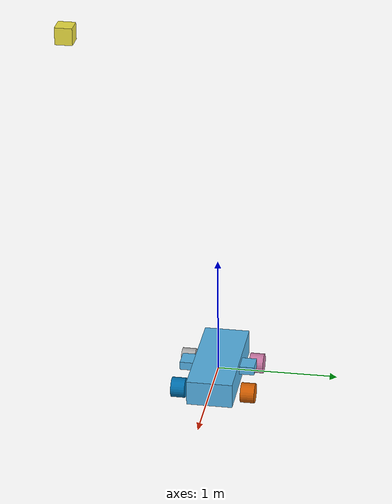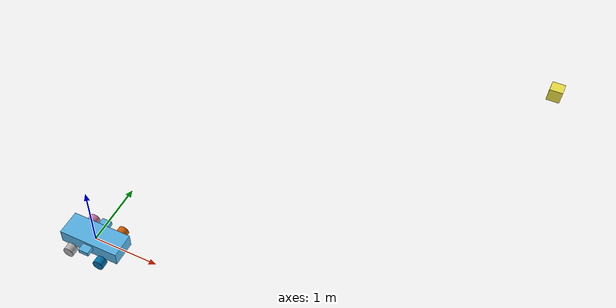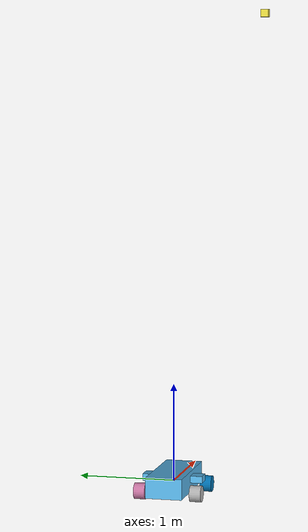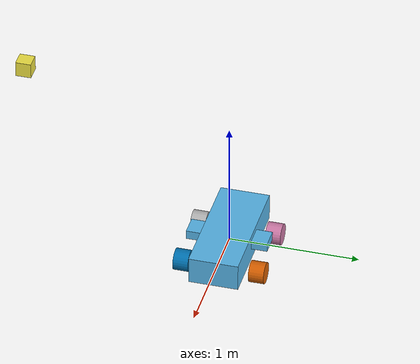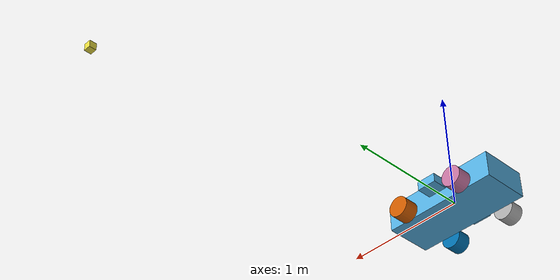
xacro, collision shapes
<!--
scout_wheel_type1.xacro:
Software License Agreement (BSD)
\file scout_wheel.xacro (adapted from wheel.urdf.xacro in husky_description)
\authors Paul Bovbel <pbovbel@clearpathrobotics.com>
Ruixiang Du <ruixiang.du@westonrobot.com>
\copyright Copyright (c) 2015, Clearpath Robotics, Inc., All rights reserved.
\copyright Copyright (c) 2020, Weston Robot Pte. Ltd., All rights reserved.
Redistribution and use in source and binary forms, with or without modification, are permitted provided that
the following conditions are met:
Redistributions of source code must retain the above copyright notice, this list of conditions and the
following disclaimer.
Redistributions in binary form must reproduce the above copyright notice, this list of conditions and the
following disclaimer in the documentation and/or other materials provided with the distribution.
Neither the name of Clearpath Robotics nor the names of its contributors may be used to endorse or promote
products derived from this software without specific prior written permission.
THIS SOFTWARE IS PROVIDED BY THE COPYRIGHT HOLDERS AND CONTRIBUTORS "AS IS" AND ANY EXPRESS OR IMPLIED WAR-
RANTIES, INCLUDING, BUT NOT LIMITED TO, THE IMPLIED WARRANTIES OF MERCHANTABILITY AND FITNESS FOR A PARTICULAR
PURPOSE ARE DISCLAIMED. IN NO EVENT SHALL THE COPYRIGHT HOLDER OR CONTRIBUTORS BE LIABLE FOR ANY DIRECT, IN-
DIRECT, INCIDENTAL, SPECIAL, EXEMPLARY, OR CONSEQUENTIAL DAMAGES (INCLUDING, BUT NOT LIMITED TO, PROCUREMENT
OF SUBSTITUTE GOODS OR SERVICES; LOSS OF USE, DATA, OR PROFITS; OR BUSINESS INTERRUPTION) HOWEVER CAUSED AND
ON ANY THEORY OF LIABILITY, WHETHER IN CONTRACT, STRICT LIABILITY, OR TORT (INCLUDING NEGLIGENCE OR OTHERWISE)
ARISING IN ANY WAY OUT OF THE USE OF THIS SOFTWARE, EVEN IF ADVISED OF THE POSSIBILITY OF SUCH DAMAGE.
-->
<?xml version="1.0"?>

<robot name="scout_v2"
    xmlns:xacro="http://ros.org/wiki/xacro">

    <xacro:arg name="robot_namespace" default="/" />

    <xacro:include filename="$(find scout_description)/urdf/scout_wheel_type1.xacro" />
    <xacro:include filename="$(find scout_description)/urdf/scout_wheel_type2.xacro" />

    <!-- Variables -->
    <xacro:property name="M_PI" value="3.14159"/>

    <!-- Vehicle Geometries -->
    <xacro:property name="base_x_size" value="0.9250000" />
    <xacro:property name="base_y_size" value="0.380000" />
    <xacro:property name="base_z_size" value="0.210000" />

    <xacro:property name="wheelbase" value="0.498" />
    <xacro:property name="track" value="0.58306" />
    <xacro:property name="wheel_vertical_offset" value="-0.0702" />

    <xacro:property name="wheel_length" value="1.1653e-01" />
    <xacro:property name="wheel_radius" value="0.8229e-01" />

    <!-- Base footprint -->
    <link name="base_footprint"/>

    <joint name="base_footprint_joint" type="fixed">
        <origin xyz="0 0 ${wheel_vertical_offset - wheel_radius}" rpy="0 0 0" />
        <parent link="base_link" />
        <child link="base_footprint" />
    </joint>

    <!-- Base link -->
    <link name="base_link">
        <visual>
            <origin xyz="0 0 0" rpy="0 0 0" />
            <geometry>
                <mesh filename="package://scout_description/meshes/base_link.dae" />
            </geometry>
        </visual>
        <collision>
            <origin xyz="0 0 0.008" rpy="0 0 0" />
            <geometry>
                <box size="${base_x_size} ${base_y_size} ${base_z_size}"/>
            </geometry>
        </collision>
        <collision>
            <origin xyz="0 0 ${base_z_size/6}" rpy="0 0 0" />
            <geometry>
                <box size="${base_x_size/6} ${base_y_size*1.65} ${base_z_size/3}"/>
            </geometry>
        </collision>
    </link>

    <link name="inertial_link">
        <inertial>
            <mass value="40" />
            <origin xyz="0.0 0.0 0.0" />
            <inertia ixx="2.288641" ixy="0" ixz="0" iyy="5.103976" iyz="0" izz="3.431465" />
        </inertial>
    </link>

    <joint name="inertial_joint" type="fixed">
        <origin xyz="0 0 0" rpy="0 0 0" />
        <parent link="base_link" />
        <child link="inertial_link" />
    </joint>

    <!-- 2D-rplidar -->
    <link name="rplidar_link">
	<collision>
		<origin xyz="0 0 0" rpy="0 0 0"/>
		<geometry>
			<box size="0.1 0.1 0.1"/>
		</geometry>
	</collision>

	<visual>
		<origin xyz="0 0 -0.03125" rpy="1.5707 0 0"/>
		<geometry>
			<box size="0.1 0.1 0.1"/>
			<meshfile name="package://scout_description/meshes/rplidar.dae" scale="0.1 0.1 0.1" />
		</geometry>
	</visual>

	<inertial>
		<mass value="1e-5"/>
		<origin xyz="0 0 0" rpy="0 0 0"/>
		<inertia ixx="1e-6" ixy="0" ixz="0" iyy="1e-6" iyz="0" izz="1e-6"/>
	</inertial>
    </link>

    <joint name="rplidar_joint" type="fixed">
	<axis xyz="0 1 0"/>
	<origin xyz="5 0 5" rpy="0 0 0 "/>
	<parent link="base_link"/>
	<child link="rplidar_link"/>
    </joint>
    <!-- Scout wheel macros -->
    <!-- wheel labeled from 0 to 3, conter-clockwise, starting from front right wheel -->
    <!-- motor 1 and 2 (left side) are mechanically installed in a reversed direction -->
    <xacro:scout_wheel_type1 wheel_prefix="front_right">
        <origin xyz="${wheelbase/2} ${-track/2} ${wheel_vertical_offset}" rpy="3.14 0 0" />
    </xacro:scout_wheel_type1>
    <xacro:scout_wheel_type2 wheel_prefix="front_left">
        <origin xyz="${wheelbase/2} ${track/2} ${wheel_vertical_offset}" rpy="0 0 0" />
    </xacro:scout_wheel_type2>
    <xacro:scout_wheel_type1 wheel_prefix="rear_left">
        <origin xyz="${-wheelbase/2} ${track/2} ${wheel_vertical_offset}" rpy="0 0 0" />
    </xacro:scout_wheel_type1>
    <xacro:scout_wheel_type2 wheel_prefix="rear_right">
        <origin xyz="${-wheelbase/2} ${-track/2} ${wheel_vertical_offset}" rpy="3.14 0 0" />
    </xacro:scout_wheel_type2>

</robot>

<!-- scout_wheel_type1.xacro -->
<robot xmlns:xacro="http://ros.org/wiki/xacro" name="scout_wheel">

    <xacro:macro name="scout_wheel_type1" params="wheel_prefix *joint_pose">
        <link name="${wheel_prefix}_wheel_link">
            <inertial>
                <mass value="8" />
                <origin xyz="0 0 0" />
                <inertia ixx="0.1171" ixy="0" ixz="0" iyy="0.1361" iyz="0" izz="0.1171" />
            </inertial>
            <visual>
                <origin xyz="0 0 0" rpy="0 0 0" />
                <geometry>
                    <mesh filename="file://$(find scout_description)/meshes/wheel_type1.dae" />
                </geometry>
            </visual>
            <collision>
                <origin xyz="0 0 0" rpy="${M_PI/2} 0 0" />
                <geometry>
                    <cylinder length="${wheel_length}" radius="${wheel_radius}" />
                </geometry>
                     <contact>
                         <ode>
                        <min_depth>0.001</min_depth>
                         </ode>
                    </contact>
            </collision>
        </link>

        <joint name="${wheel_prefix}_wheel" type="continuous">
            <parent link="base_link"/>
            <child link="${wheel_prefix}_wheel_link"/>
            <xacro:insert_block name="joint_pose"/>
            <axis xyz="0 -1 0" rpy="0 0 0" />
            <dynamics damping="0.0" friction="20"/>
        </joint>
    </xacro:macro>

</robot>

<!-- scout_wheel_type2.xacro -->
<robot xmlns:xacro="http://ros.org/wiki/xacro" name="scout_wheel">

    <xacro:macro name="scout_wheel_type2" params="wheel_prefix *joint_pose">
        <link name="${wheel_prefix}_wheel_link">
            <inertial>
                <mass value="8" />
                <origin xyz="0 0 0" />
                <inertia ixx="0.1171" ixy="0" ixz="0" iyy="0.1361" iyz="0" izz="0.1171" />
            </inertial>
            <visual>
                <origin xyz="0 0 0" rpy="0 0 0" />
                <geometry>
                    <mesh filename="file://$(find scout_description)/meshes/wheel_type1.dae" />
                </geometry>
            </visual>
            <collision>
                <origin xyz="0 0 0" rpy="${M_PI/2} 0 0" />
                <geometry>
                    <cylinder length="${wheel_length}" radius="${wheel_radius}" />
                </geometry>
                    <contact>
                         <ode>
                        <min_depth>0.001</min_depth>
                         </ode>
                    </contact>
            </collision>
        </link>

        <joint name="${wheel_prefix}_wheel" type="continuous">
            <parent link="base_link"/>
            <child link="${wheel_prefix}_wheel_link"/>
            <xacro:insert_block name="joint_pose"/>
            <axis xyz="0 1 0" rpy="0 0 0" />
            <dynamics damping="0.0" friction="20"/>
        </joint>
    </xacro:macro>

</robot>
